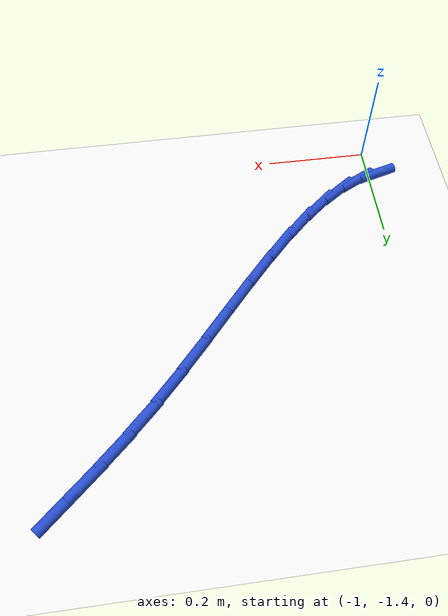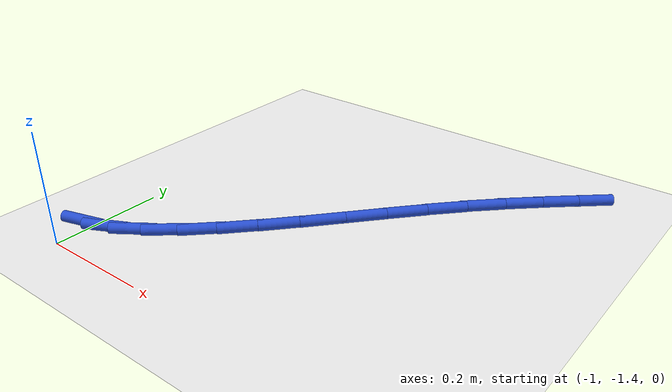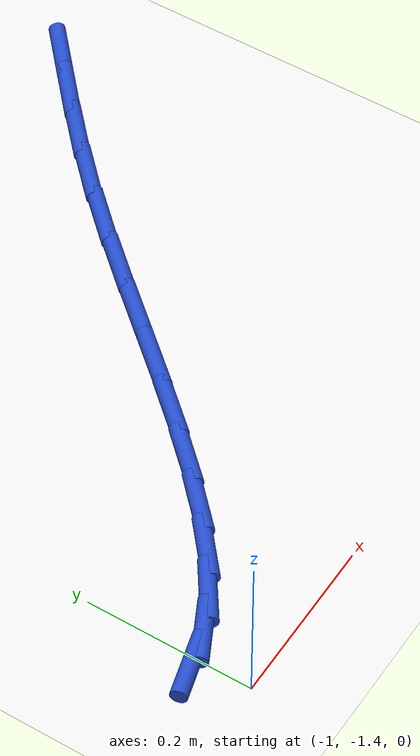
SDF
<sdf version="1.6">
 <world name="default">
  <model name="ground_plane">
   <static>1</static>
   <link name="link">
    <collision name="collision">
     <geometry><plane><normal>0 0 1</normal><size>100 100</size></plane></geometry>
     <surface><friction><ode><mu>100</mu><mu2>50</mu2></ode></friction></surface>
    </collision>
    <visual name="visual">
     <cast_shadows>0</cast_shadows>
     <geometry><plane><normal>0 0 1</normal><size>100 100</size></plane></geometry>
     <material>
      <script><uri>file://media/materials/scripts/gazebo.material</uri><name>Gazebo/WhiteGlow</name></script>
     </material>
    </visual>
   </link>
  </model>
  <model name="line">
   <link name="link_92">
    <pose>-1.0157981136221947 -1.3362690212303332 0.01 0 1.57 0.271347447840434</pose>
    <collision name="collision">
     <geometry><cylinder><radius>0.01</radius><length>0.08</length></cylinder></geometry>
    </collision>
    <visual name="visual">
     <material>
      <script><name>Gazebo/Blue</name><uri>file://media/materials/scripts/gazebo.material</uri></script>
     </material>
     <geometry><cylinder><radius>0.01</radius><length>0.08</length></cylinder></geometry>
    </visual>
   </link>
   <link name="link_93">
    <pose>-0.9713765839274806 -1.3239105370553088 0.01 0 1.57 0.46758634532723586</pose>
    <collision name="collision">
     <geometry><cylinder><radius>0.01</radius><length>0.08</length></cylinder></geometry>
    </collision>
    <visual name="visual">
     <material>
      <script><name>Gazebo/Blue</name><uri>file://media/materials/scripts/gazebo.material</uri></script>
     </material>
     <geometry><cylinder><radius>0.01</radius><length>0.08</length></cylinder></geometry>
    </visual>
   </link>
   <link name="link_94">
    <pose>-0.9263334826094888 -1.3011667815197627 0.01 0 1.57 0.6071153611769021</pose>
    <collision name="collision">
     <geometry><cylinder><radius>0.01</radius><length>0.08</length></cylinder></geometry>
    </collision>
    <visual name="visual">
     <material>
      <script><name>Gazebo/Blue</name><uri>file://media/materials/scripts/gazebo.material</uri></script>
     </material>
     <geometry><cylinder><radius>0.01</radius><length>0.08</length></cylinder></geometry>
    </visual>
   </link>
   <link name="link_95">
    <pose>-0.8807196395722661 -1.2694818671032146 0.01 0 1.57 0.7040946252275712</pose>
    <collision name="collision">
     <geometry><cylinder><radius>0.01</radius><length>0.08</length></cylinder></geometry>
    </collision>
    <visual name="visual">
     <material>
      <script><name>Gazebo/Blue</name><uri>file://media/materials/scripts/gazebo.material</uri></script>
     </material>
     <geometry><cylinder><radius>0.01</radius><length>0.08</length></cylinder></geometry>
    </visual>
   </link>
   <link name="link_96">
    <pose>-0.834585884719859 -1.2302999062851843 0.01 0 1.57 0.7705040578106662</pose>
    <collision name="collision">
     <geometry><cylinder><radius>0.01</radius><length>0.08</length></cylinder></geometry>
    </collision>
    <visual name="visual">
     <material>
      <script><name>Gazebo/Blue</name><uri>file://media/materials/scripts/gazebo.material</uri></script>
     </material>
     <geometry><cylinder><radius>0.01</radius><length>0.08</length></cylinder></geometry>
    </visual>
   </link>
   <link name="link_97">
    <pose>-0.7879830479563159 -1.1850650115451922 0.01 0 1.57 0.8145297854805836</pose>
    <collision name="collision">
     <geometry><cylinder><radius>0.01</radius><length>0.08</length></cylinder></geometry>
    </collision>
    <visual name="visual">
     <material>
      <script><name>Gazebo/Blue</name><uri>file://media/materials/scripts/gazebo.material</uri></script>
     </material>
     <geometry><cylinder><radius>0.01</radius><length>0.08</length></cylinder></geometry>
    </visual>
   </link>
   <link name="link_98">
    <pose>-0.7409619591856833 -1.1352212953627583 0.01 0 1.57 0.8413167566998941</pose>
    <collision name="collision">
     <geometry><cylinder><radius>0.01</radius><length>0.08</length></cylinder></geometry>
    </collision>
    <visual name="visual">
     <material>
      <script><name>Gazebo/Blue</name><uri>file://media/materials/scripts/gazebo.material</uri></script>
     </material>
     <geometry><cylinder><radius>0.01</radius><length>0.08</length></cylinder></geometry>
    </visual>
   </link>
   <link name="link_99">
    <pose>-0.6935734483120081 -1.0822128702174019 0.01 0 1.57 0.8538611003042847</pose>
    <collision name="collision">
     <geometry><cylinder><radius>0.01</radius><length>0.08</length></cylinder></geometry>
    </collision>
    <visual name="visual">
     <material>
      <script><name>Gazebo/Blue</name><uri>file://media/materials/scripts/gazebo.material</uri></script>
     </material>
     <geometry><cylinder><radius>0.01</radius><length>0.08</length></cylinder></geometry>
    </visual>
   </link>
   <link name="link_100">
    <pose>-0.6458683452393373 -1.0274838485886426 0.01 0 1.57 0.8536053444714762</pose>
    <collision name="collision">
     <geometry><cylinder><radius>0.01</radius><length>0.08</length></cylinder></geometry>
    </collision>
    <visual name="visual">
     <material>
      <script><name>Gazebo/Blue</name><uri>file://media/materials/scripts/gazebo.material</uri></script>
     </material>
     <geometry><cylinder><radius>0.01</radius><length>0.08</length></cylinder></geometry>
    </visual>
   </link>
   <link name="link_101">
    <pose>-0.5978974798717188 -0.9724783429560016 0.01 0 1.57 0.8407412758177288</pose>
    <collision name="collision">
     <geometry><cylinder><radius>0.01</radius><length>0.08</length></cylinder></geometry>
    </collision>
    <visual name="visual">
     <material>
      <script><name>Gazebo/Blue</name><uri>file://media/materials/scripts/gazebo.material</uri></script>
     </material>
     <geometry><cylinder><radius>0.01</radius><length>0.08</length></cylinder></geometry>
    </visual>
   </link>
   <link name="link_102">
    <pose>-0.5497116821131995 -0.9186404657989982 0.01 0 1.57 0.8142749549080792</pose>
    <collision name="collision">
     <geometry><cylinder><radius>0.01</radius><length>0.08</length></cylinder></geometry>
    </collision>
    <visual name="visual">
     <material>
      <script><name>Gazebo/Blue</name><uri>file://media/materials/scripts/gazebo.material</uri></script>
     </material>
     <geometry><cylinder><radius>0.01</radius><length>0.08</length></cylinder></geometry>
    </visual>
   </link>
   <link name="link_103">
    <pose>-0.5013617818678262 -0.8674143295971519 0.01 0 1.57 0.7763955566592219</pose>
    <collision name="collision">
     <geometry><cylinder><radius>0.01</radius><length>0.08</length></cylinder></geometry>
    </collision>
    <visual name="visual">
     <material>
      <script><name>Gazebo/Blue</name><uri>file://media/materials/scripts/gazebo.material</uri></script>
     </material>
     <geometry><cylinder><radius>0.01</radius><length>0.08</length></cylinder></geometry>
    </visual>
   </link>
   <link name="link_104">
    <pose>-0.4529642529080255 -0.8198804566548709 0.01 0 1.57 0.7453766218806633</pose>
    <collision name="collision">
     <geometry><cylinder><radius>0.01</radius><length>0.08</length></cylinder></geometry>
    </collision>
    <visual name="visual">
     <material>
      <script><name>Gazebo/Blue</name><uri>file://media/materials/scripts/gazebo.material</uri></script>
     </material>
     <geometry><cylinder><radius>0.01</radius><length>0.08</length></cylinder></geometry>
    </visual>
   </link>
   <link name="link_105">
    <pose>-0.4049212730117813 -0.7755369035874795 0.01 0 1.57 0.7280893149577019</pose>
    <collision name="collision">
     <geometry><cylinder><radius>0.01</radius><length>0.08</length></cylinder></geometry>
    </collision>
    <visual name="visual">
     <material>
      <script><name>Gazebo/Blue</name><uri>file://media/materials/scripts/gazebo.material</uri></script>
     </material>
     <geometry><cylinder><radius>0.01</radius><length>0.08</length></cylinder></geometry>
    </visual>
   </link>
   <link name="link_106">
    <pose>-0.35771272847634705 -0.7334513127945217 0.01 0 1.57 0.7262177648244043</pose>
    <collision name="collision">
     <geometry><cylinder><radius>0.01</radius><length>0.08</length></cylinder></geometry>
    </collision>
    <visual name="visual">
     <material>
      <script><name>Gazebo/Blue</name><uri>file://media/materials/scripts/gazebo.material</uri></script>
     </material>
     <geometry><cylinder><radius>0.01</radius><length>0.08</length></cylinder></geometry>
    </visual>
   </link>
  </model>
 </world>
</sdf>
